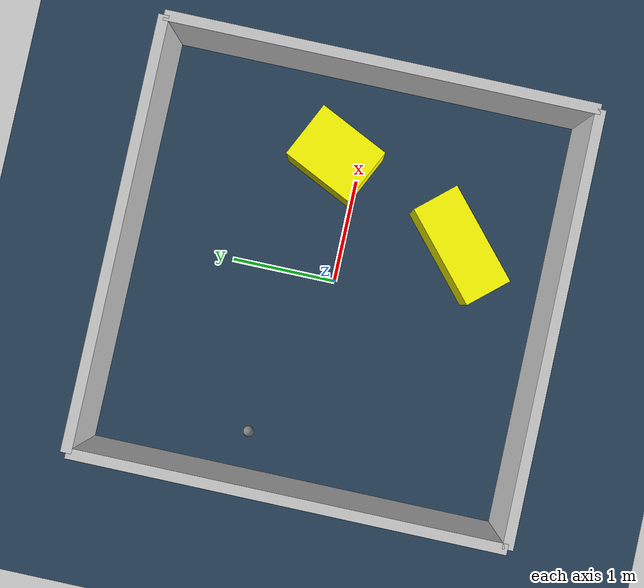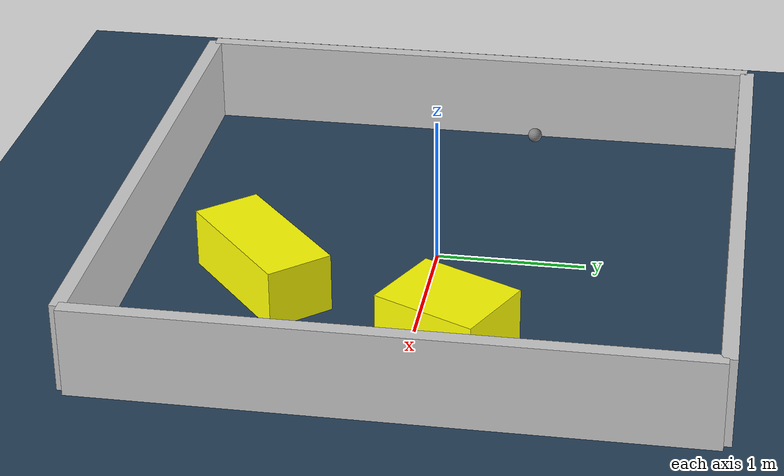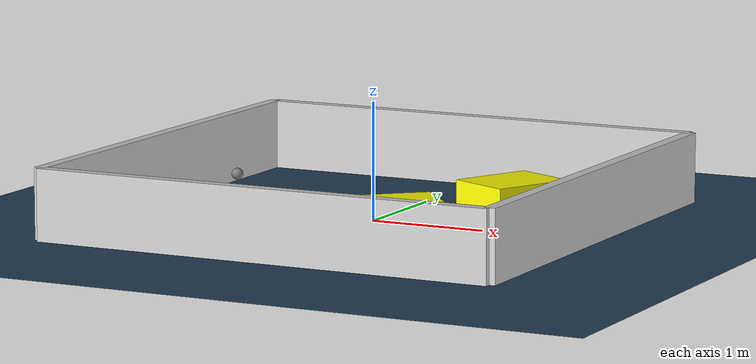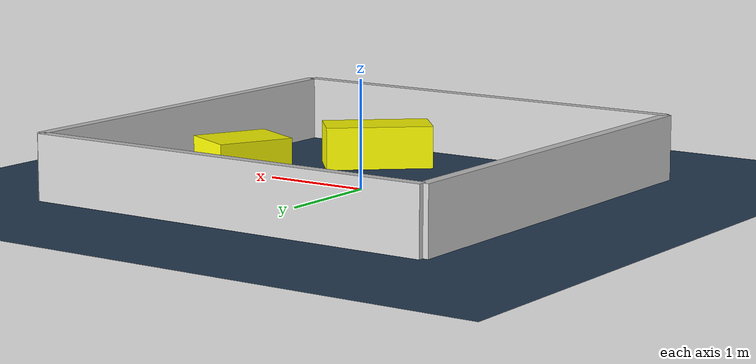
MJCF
<?xml version="1.0" ?>
<mujoco model="generated_environment">
  <option timestep="0.01" integrator="RK4" cone="elliptic"/>
  <default>
    <geom density="1"/>
  </default>
  <asset>
    <texture builtin="gradient" height="3072" rgb1="0.3 0.5 0.7" rgb2="0 0 0" type="skybox" width="512"/>
    <texture builtin="checker" height="300" mark="edge" markrgb="0.8 0.8 0.8" name="groundplane" rgb1="0.2 0.3 0.4" rgb2="0.1 0.2 0.3" type="2d" width="300"/>
    <material name="groundplane" reflectance="0.2" texrepeat="5 5" texture="groundplane" texuniform="true"/>
    <material name="robot" rgba="0.0 1.0 0.0 1"/>
  </asset>
  <worldbody>
    <light dir="0 0 -1" directional="true" pos="0 0 1.5"/>
    <geom condim="4" friction="1.0 0.005 0.001" material="groundplane" name="floor" size="0 0 0.05" type="plane"/>
    <body name="walls">
      <geom name="wall_1" condim="4" pos="-2.0 0.0 0.3" rgba="0.800000011920929 0.800000011920929 0.800000011920929 1.0" size="0.05 2.0 0.3" type="box"/>
      <geom name="wall_2" condim="4" pos="2.0 0.0 0.3" rgba="0.800000011920929 0.800000011920929 0.800000011920929 1.0" size="0.05 2.0 0.3" type="box"/>
      <geom name="wall_3" condim="4" pos="0.0 -2.0 0.3" rgba="0.800000011920929 0.800000011920929 0.800000011920929 1.0" size="2.0 0.05 0.3" type="box"/>
      <geom name="wall_4" condim="4" pos="0.0 2.0 0.3" rgba="0.800000011920929 0.800000011920929 0.800000011920929 1.0" size="2.0 0.05 0.3" type="box"/>
    </body>
    <body name="robot">
      <joint name="joint_x" type="slide" pos="0 0 0" axis="1 0 0"/>
      <joint name="joint_y" type="slide" pos="0 0 0" axis="0 1 0"/>
      <geom name="robot" type="sphere" pos="-1.553437732825905 0.49021271356741414 0.2" size="0.05" mass="5." friction="1.0 0.005 0.0001" condim="4"/>
      <site name="sensor_ball"/>
    </body>
    <body name="obstacle_1_movable">
      <geom name="obstacle_1_movable" condim="4" pos="0.5687899297265155 -1.0740162657570205 0.2" euler="0 0 311.08035083339513" friction="1.0 0.005 0.001" rgba="1 1 0 1" size="0.2284506342148739 0.5031249506501223 0.2" type="box" mass="0.1"/>
      <joint type="free"/>
    </body>
    <body name="obstacle_2_movable">
      <geom name="obstacle_2_movable" condim="4" pos="1.1530612268588363 0.2400563320428375 0.2" euler="0 0 334.2845751424418" friction="1.0 0.005 0.001" rgba="1 1 0 1" size="0.28389961282771325 0.35953097916502486 0.2" type="box" mass="0.1"/>
      <joint type="free"/>
    </body>
  </worldbody>
  <actuator>
    <motor name="actuator_x" joint="joint_x" gear="1" ctrlrange="-1 1"/>
    <motor name="actuator_y" joint="joint_y" gear="1" ctrlrange="-1 1"/>
  </actuator>
</mujoco>
